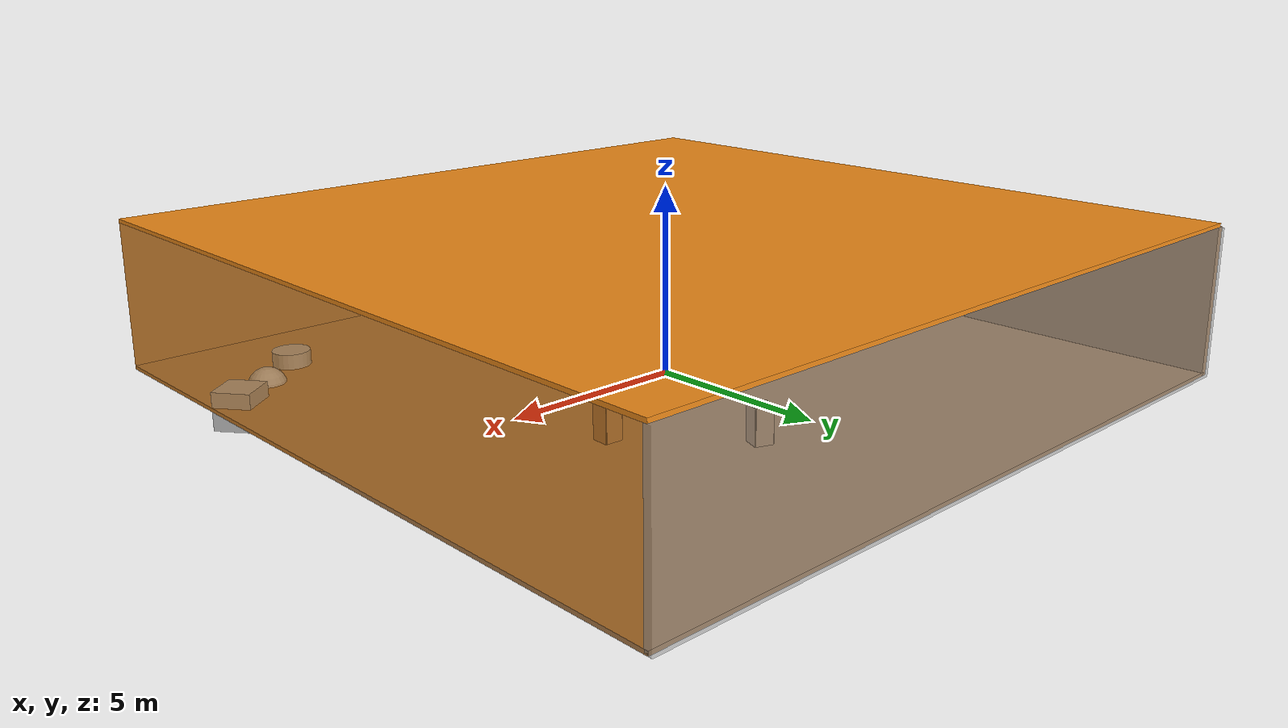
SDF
<sdf version="1.4">
 <world name="default">
  <physics type="ode">
   <max_step_size>0.001</max_step_size>
   <real_time_factor>1</real_time_factor>
   <real_time_update_rate>1000</real_time_update_rate>
   <gravity>0 0 -9.8</gravity>
  </physics>
  <scene><ambient>0.4 0.4 0.4 1</ambient><background>0.7 0.7 0.7 1</background><shadows>1</shadows></scene>
  <model name="Surrounding">
   <static>1</static>
   <link name="Ceiling">
    <collision name="Ceiling_Collision"><geometry><box><size>20 20 0.1</size></box></geometry></collision>
    <visual name="Ceiling_Visual">
     <geometry><box><size>20 20 0.1</size></box></geometry>
     <material>
      <script><uri>file://media/materials/scripts/gazebo.material</uri><name>Gazebo/Orange</name></script>
     </material>
    </visual>
    <pose>0 0 4.05 0 0 0</pose>
   </link>
   <link name="Wall_South">
    <collision name="Wall_South_Collision">
     <geometry><box><size>20 0 4</size></box></geometry>
     <pose>0 0 2 0 -0 0</pose>
    </collision>
    <visual name="Wall_South_Visual">
     <pose>0 0 2 0 -0 0</pose>
     <geometry><box><size>20 0 4</size></box></geometry>
     <material>
      <script><uri>file://media/materials/scripts/gazebo.material</uri><name>Gazebo/Wood</name></script>
     </material>
    </visual>
    <velocity_decay><linear>0</linear><angular>0</angular></velocity_decay>
    <pose>0 -10 0 0 -0 0</pose>
   </link>
   <link name="Wall_East">
    <collision name="Wall_21_Collision">
     <geometry><box><size>20 0 4</size></box></geometry>
     <pose>0 0 2 0 -0 0</pose>
    </collision>
    <visual name="Wall_21_Visual">
     <pose>0 0 2 0 -0 0</pose>
     <geometry><box><size>20 0 4</size></box></geometry>
     <material>
      <script>
       <uri>file://media/materials/scripts/gazebo.material</uri>
       <name>Gazebo/OrangeTransparent</name>
      </script>
     </material>
    </visual>
    <velocity_decay><linear>0</linear><angular>0</angular></velocity_decay>
    <pose>10 0 0 0 -0 1.5708</pose>
   </link>
   <link name="Wall_North">
    <collision name="Wall_22_Collision">
     <geometry><box><size>20 0.2 4</size></box></geometry>
     <pose>0 0 2 0 -0 0</pose>
    </collision>
    <visual name="Wall_22_Visual">
     <pose>0 0 2 0 -0 0</pose>
     <geometry><box><size>20 0.2 4</size></box></geometry>
     <material>
      <script><uri>file://media/materials/scripts/gazebo.material</uri><name>Gazebo/GreyTransparent</name></script>
     </material>
    </visual>
    <velocity_decay><linear>0</linear><angular>0</angular></velocity_decay>
    <pose>0 10 0 0 -0 0</pose>
   </link>
   <link name="Wall_West">
    <collision name="Wall_23_Collision">
     <geometry><box><size>20 0.2 4</size></box></geometry>
     <pose>0 0 2 0 -0 0</pose>
    </collision>
    <visual name="Wall_23_Visual">
     <pose>0 0 2 0 -0 0</pose>
     <geometry><box><size>20 0.2 4</size></box></geometry>
     <material>
      <script><uri>file://media/materials/scripts/gazebo.material</uri><name>Gazebo/WoodPallet</name></script>
     </material>
    </visual>
    <velocity_decay><linear>0</linear><angular>0</angular></velocity_decay>
    <pose>-10 0 0 0 0 -1.5708</pose>
   </link>
   <link name="Ground_link">
    <collision name="collision">
     <pose>0 0 .05 0 -0 0</pose>
     <geometry><box><size>20 20 0.1</size></box></geometry>
    </collision>
    <visual name="visual">
     <pose>0 0 .05 0 -0 0</pose>
     <geometry><box><size>20 20 0.1</size></box></geometry>
     <material>
      <script><uri>file://media/materials/scripts/gazebo.material</uri><name>Gazebo/WoodPallet</name></script>
     </material>
    </visual>
   </link>
   <static>1</static>
  </model>
  <spherical_coordinates>
   <surface_model>EARTH_WGS84</surface_model>
   <latitude_deg>0</latitude_deg>
   <longitude_deg>0</longitude_deg>
   <elevation>0</elevation>
   <heading_deg>0</heading_deg>
  </spherical_coordinates>
  <light name="lightball_0" type="diffuse">
   <diffuse>0.8 0.8 0.8 1</diffuse>
   <specular>0.2 0.2 0.2 1</specular>
   <attenuation>
    <range>100</range>
    <constant>0.7</constant>
    <linear>0.01</linear>
    <quadratic>0.001</quadratic>
   </attenuation>
   <direction>-0.5 0.1 -0.9</direction>
   <pose>4.45330476657 7.4667918717 1.5224502024 0 0 0</pose>
  </light>
  <light name="lightball_1" type="diffuse">
   <diffuse>0.8 0.8 0.8 1</diffuse>
   <specular>0.2 0.2 0.2 1</specular>
   <attenuation>
    <range>100</range>
    <constant>0.7</constant>
    <linear>0.01</linear>
    <quadratic>0.001</quadratic>
   </attenuation>
   <direction>-0.5 0.1 -0.9</direction>
   <pose>8.1690289763 -1.53627359289 3.26195077879 0 0 0</pose>
  </light>
  <light name="lightball_2" type="diffuse">
   <diffuse>0.8 0.8 0.8 1</diffuse>
   <specular>0.2 0.2 0.2 1</specular>
   <attenuation>
    <range>100</range>
    <constant>0.7</constant>
    <linear>0.01</linear>
    <quadratic>0.001</quadratic>
   </attenuation>
   <direction>-0.5 0.1 -0.9</direction>
   <pose>-0.267695497627 9.88635591548 2.94855808183 0 0 0</pose>
  </light>
  <light name="lightball_3" type="diffuse">
   <diffuse>0.8 0.8 0.8 1</diffuse>
   <specular>0.2 0.2 0.2 1</specular>
   <attenuation>
    <range>100</range>
    <constant>0.7</constant>
    <linear>0.01</linear>
    <quadratic>0.001</quadratic>
   </attenuation>
   <direction>-0.5 0.1 -0.9</direction>
   <pose>-6.78271682425 0.410402687181 0.719045880704 0 0 0</pose>
  </light>
  <light name="lightball_4" type="diffuse">
   <diffuse>0.8 0.8 0.8 1</diffuse>
   <specular>0.2 0.2 0.2 1</specular>
   <attenuation>
    <range>100</range>
    <constant>0.7</constant>
    <linear>0.01</linear>
    <quadratic>0.001</quadratic>
   </attenuation>
   <direction>-0.5 0.1 -0.9</direction>
   <pose>1.36521407127 -6.57315846355 1.53760607353 0 0 0</pose>
  </light>
  <light name="lightball_5" type="diffuse">
   <diffuse>0.8 0.8 0.8 1</diffuse>
   <specular>0.2 0.2 0.2 1</specular>
   <attenuation>
    <range>100</range>
    <constant>0.7</constant>
    <linear>0.01</linear>
    <quadratic>0.001</quadratic>
   </attenuation>
   <direction>-0.5 0.1 -0.9</direction>
   <pose>-4.36568077753 -1.22703203141 1.20736892981 0 0 0</pose>
  </light>
  <light name="lightball_6" type="diffuse">
   <diffuse>0.8 0.8 0.8 1</diffuse>
   <specular>0.2 0.2 0.2 1</specular>
   <attenuation>
    <range>100</range>
    <constant>0.7</constant>
    <linear>0.01</linear>
    <quadratic>0.001</quadratic>
   </attenuation>
   <direction>-0.5 0.1 -0.9</direction>
   <pose>-7.73977313236 -7.06332148274 1.03454803016 0 0 0</pose>
  </light>
  <light name="lightball_7" type="diffuse">
   <diffuse>0.8 0.8 0.8 1</diffuse>
   <specular>0.2 0.2 0.2 1</specular>
   <attenuation>
    <range>100</range>
    <constant>0.7</constant>
    <linear>0.01</linear>
    <quadratic>0.001</quadratic>
   </attenuation>
   <direction>-0.5 0.1 -0.9</direction>
   <pose>9.96724897451 0.98003259397 2.90899652583 0 0 0</pose>
  </light>
  <light name="lightball_8" type="diffuse">
   <diffuse>0.8 0.8 0.8 1</diffuse>
   <specular>0.2 0.2 0.2 1</specular>
   <attenuation>
    <range>100</range>
    <constant>0.7</constant>
    <linear>0.01</linear>
    <quadratic>0.001</quadratic>
   </attenuation>
   <direction>-0.5 0.1 -0.9</direction>
   <pose>7.3821288963 -0.597534303942 3.66659827978 0 0 0</pose>
  </light>
  <light name="lightball_9" type="diffuse">
   <diffuse>0.8 0.8 0.8 1</diffuse>
   <specular>0.2 0.2 0.2 1</specular>
   <attenuation>
    <range>100</range>
    <constant>0.7</constant>
    <linear>0.01</linear>
    <quadratic>0.001</quadratic>
   </attenuation>
   <direction>-0.5 0.1 -0.9</direction>
   <pose>-3.44040427702 -6.58002800604 1.70367425799 0 0 0</pose>
  </light>
  <include>
   <uri>model://construction_cone</uri>
   <pose>-6.4326790644 -8.1174266966 0 0 0 2.27023925378</pose>
  </include>
  <include><uri>model://cabinet</uri><pose>-2.39881682346 -3.61337408418 0 0 0 0.127111852878</pose></include>
  <include><uri>model://cabinet</uri><pose>2.04722642712 5.20823329383 0 0 0 1.20889472982</pose></include>
  <include><uri>model://cabinet</uri><pose>4.41470387338 2.69101719312 0 0 0 1.52755713843</pose></include>
  <include>
   <uri>model://textured_shapes</uri>
   <pose>8.10644432147 -6.32702880966 0 0 0 2.22267700081</pose>
  </include>
 </world>
</sdf>

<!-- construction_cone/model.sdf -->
<sdf version="1.5">
  <model name="Construction Cone">
    <link name="link">
      <collision name="collision">
        <geometry>
          <mesh>
            <scale>10 10 10</scale>
            <uri>file://isr-testbed/construction_cone/meshes/construction_cone.dae</uri>
          </mesh>
        </geometry>
      </collision>
      <visual name="visual">
        <geometry>
          <mesh>
            <scale>10 10 10</scale>
            <uri>file://isr-testbed/construction_cone/meshes/construction_cone.dae</uri>
          </mesh>
        </geometry>
      </visual>
    </link>
  </model>
</sdf>

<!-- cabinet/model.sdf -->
<sdf version="1.5">
  <model name="cabinet">
    <static>true</static>
    <link name="cabinet_bottom_plate">
      <inertial>
        <pose>0 0 -1 0 0 0</pose>
        <inertia>
          <ixx>2.050000</ixx>
          <ixy>0</ixy>
          <ixz>0</ixz>
          <iyy>2.050000</iyy>
          <iyz>0</iyz>
          <izz>2.050000</izz>
        </inertia>
        <mass>25.000000</mass>
      </inertial>
      <collision name="cabinet_bottom_plate_geom">
        <pose>0 0 0.010000 0 0 0</pose>
        <geometry>
          <box>
            <size>0.450000 0.450000 0.020000</size>
          </box>
        </geometry>
      </collision>
      <visual name="cabinet_bottom_plate_geom_visual">
        <pose>0 0 0.010000 0 0 0</pose>
        <geometry>
          <box>
            <size>0.450000 0.450000 0.020000</size>
          </box>
        </geometry>
        <material>
          <script>
            <uri>model://media/materials/scripts/gazebo.material</uri>
            <name>Gazebo/Wood</name>
          </script>
        </material>
      </visual>
      <collision name="cabinet_bottom_plate_geom_cabinet_back_plate">
        <pose>0.235000 0 0.510000 0 0 0</pose>
        <geometry>
          <box>
            <size>0.020000 0.450000 1.020000</size>
          </box>
        </geometry>
      </collision>
      <visual name="cabinet_bottom_plate_geom_cabinet_back_plate_visual">
        <pose>0.235000 0 0.510000 0 0 0</pose>
        <geometry>
          <box>
            <size>0.020000 0.450000 1.020000</size>
          </box>
        </geometry>
        <material>
          <script>
            <uri>model://media/materials/scripts/gazebo.material</uri>
            <name>Gazebo/Wood</name>
          </script>
        </material>
      </visual>
      <collision name="cabinet_bottom_plate_geom_cabinet_left_plate">
        <pose>0 0.235000 0.510000 0 0 0</pose>
        <geometry>
          <box>
            <size>0.450000 0.020000 1.020000</size>
          </box>
        </geometry>
      </collision>
      <visual name="cabinet_bottom_plate_geom_cabinet_left_plate_visual">
        <pose>0 0.235000 0.510000 0 0 0</pose>
        <geometry>
          <box>
            <size>0.450000 0.020000 1.020000</size>
          </box>
        </geometry>
        <material>
          <script>
            <uri>model://media/materials/scripts/gazebo.material</uri>
            <name>Gazebo/Wood</name>
          </script>
        </material>
      </visual>
      <collision name="cabinet_bottom_plate_geom_cabinet_middle_plate">
        <pose>0 0 0.510000 0 0 0</pose>
        <geometry>
          <box>
            <size>0.450000 0.450000 0.020000</size>
          </box>
        </geometry>
      </collision>
      <visual name="cabinet_bottom_plate_geom_cabinet_middle_plate_visual">
        <pose>0 0 0.510000 0 0 0</pose>
        <geometry>
          <box>
            <size>0.450000 0.450000 0.020000</size>
          </box>
        </geometry>
        <material>
          <script>
            <uri>model://media/materials/scripts/gazebo.material</uri>
            <name>Gazebo/Wood</name>
          </script>
        </material>
      </visual>
      <collision name="cabinet_bottom_plate_geom_cabinet_right_plate">
        <pose>0 -0.235000 0.510000 0 0 0</pose>
        <geometry>
          <box>
            <size>0.450000 0.020000 1.020000</size>
          </box>
        </geometry>
      </collision>
      <visual name="cabinet_bottom_plate_geom_cabinet_right_plate_visual">
        <pose>0 -0.235000 0.510000 0 0 0</pose>
        <geometry>
          <box>
            <size>0.450000 0.020000 1.020000</size>
          </box>
        </geometry>
        <material>
          <script>
            <uri>model://media/materials/scripts/gazebo.material</uri>
            <name>Gazebo/Wood</name>
          </script>
        </material>
      </visual>
      <collision name="cabinet_bottom_plate_geom_cabinet_top_plate">
        <pose>0 0 1.010000 0 0 0</pose>
        <geometry>
          <box>
            <size>0.450000 0.450000 0.020000</size>
          </box>
        </geometry>
      </collision>
      <visual name="cabinet_bottom_plate_geom_cabinet_top_plate_visual">
        <pose>0 0 1.010000 0 0 0</pose>
        <geometry>
          <box>
            <size>0.450000 0.450000 0.020000</size>
          </box>
        </geometry>
        <material>
          <script>
            <uri>model://media/materials/scripts/gazebo.material</uri>
            <name>Gazebo/Wood</name>
          </script>
        </material>
      </visual>
    </link>
  </model>
</sdf>

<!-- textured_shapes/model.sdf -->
<sdf version="1.6">
  <model name="textured_shapes">
    <pose>0 0 0.5 0 0 0</pose>
    <link name="box">
      <pose>0 -1.5 0 0 0 0</pose>
      <collision name="collision">
        <geometry>
          <box>
            <size>1 1 1</size>
          </box>
        </geometry>
      </collision>
      <visual name="visual">
        <geometry>
          <box>
            <size>1 1 1</size>
          </box>
        </geometry>
        <material>
          <script>
            <uri>model://../model_source/models/textured_shapes/materials/scripts</uri>
            <uri>model://../model_source/models/textured_shapes/materials/textures</uri>
            <name>TexturedShape/Squares</name>
          </script>
        </material>
      </visual>
    </link>
    <link name="sphere">
      <collision name="collision">
        <geometry>
          <sphere>
            <radius>0.5</radius>
          </sphere>
        </geometry>
      </collision>
      <visual name="visual">
        <geometry>
          <sphere>
            <radius>0.5</radius>
          </sphere>
        </geometry>
        <material>
          <script>
            <uri>model://../model_source/models/textured_shapes/materials/scripts</uri>
            <uri>model://../model_source/models/textured_shapes/materials/textures</uri>
            <name>TexturedShape/Squares</name>
          </script>
        </material>
      </visual>
    </link>
    <link name="cylinder">
      <pose>0 1.5 0 0 0 0</pose>
      <collision name="collision">
        <geometry>
          <cylinder>
            <radius>0.5</radius>
            <length>1</length>
          </cylinder>
        </geometry>
      </collision>
      <visual name="visual">
        <geometry>
          <cylinder>
            <radius>0.5</radius>
            <length>1</length>
          </cylinder>
        </geometry>
        <material>
          <script>
            <uri>model://../model_source/models/textured_shapes/materials/scripts</uri>
            <uri>model://../model_source/models/textured_shapes/materials/textures</uri>
            <name>TexturedShape/Squares</name>
          </script>
        </material>
      </visual>
    </link>
  </model>
</sdf>
